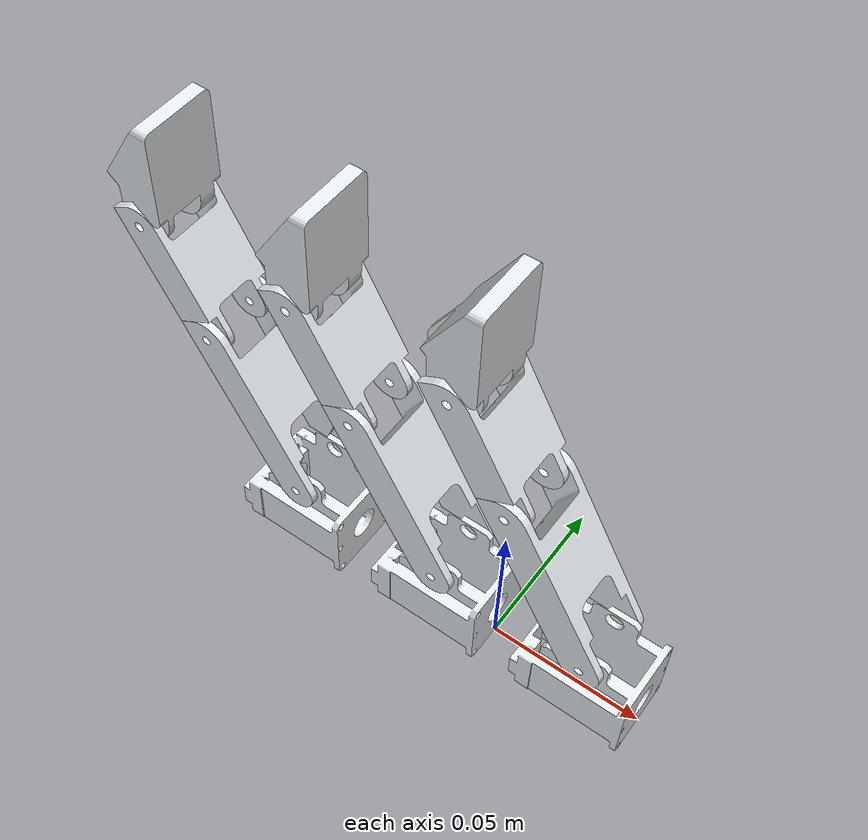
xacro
<?xml version="1.0"?>
<robot name="gripper" xmlns:xacro="http://www.ros.org/wiki/xacro">
  <xacro:include filename="$(find fingertest)/urdf/fingertest.xacro"/>
  <link name="world"/>

  <xacro:fingertest side="r" parent="world" child="base_link">
    <origin xyz="0.05 0 0" rpy="0 0 0" />
  </xacro:fingertest>

  <xacro:fingertest side="l" parent="world" child="base_link">
    <origin xyz="-0.05 0 0" rpy="0 0 0" />
  </xacro:fingertest>

  <xacro:fingertest side="m" parent="world" child="base_link">
    <origin xyz="0 0 0" rpy="0 0 0" />
  </xacro:fingertest>
</robot>

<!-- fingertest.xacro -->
<robot name="fingertest" xmlns:xacro="http://www.ros.org/wiki/xacro">
  <xacro:include filename="$(find fingertest)/urdf/fingertest.gazebo"/>
  <xacro:macro name="fingertest" params="parent side *origin">
  <link
    name="${side}_base_link">
    <inertial>
      <origin
        xyz="-0.01 0.00 0.04"
        rpy="0 0 0" />
      <mass
        value="0.0027" />
      <inertia
        ixx="0.01"
        ixy="0"
        ixz="0"
        iyy="0.01"
        iyz="0"
        izz="0.01" />
    </inertial>
    <visual>
      <origin
        xyz="0 0 0"
        rpy="0 0 0" />
      <geometry>
        <mesh
          filename="package://fingertest/meshes/base_link.STL" />
      </geometry>
      <material
        name="">
        <color
          rgba="0.898039215686275 0.917647058823529 0.929411764705882 1" />
      </material>
    </visual>
    <collision>
      <origin
        xyz="0 0 0"
        rpy="0 0 0" />
         <geometry>
               <mesh
          filename="package://fingertest/meshes/base_link.STL" />
            </geometry>

    </collision>
  </link>
  <link
    name="${side}_Link_1">
    <inertial>
      <origin
        xyz="0 -0.01 0.02"
        rpy="0 0 0" />
      <mass
        value="0.002" />
      <inertia
        ixx="0.01"
        ixy="0"
        ixz="0"
        iyy="0.01"
        iyz="0"
        izz="0.01" />
    </inertial>
    <visual>
      <origin
        xyz="0 0 0"
        rpy="0 0 0" />
      <geometry>
        <mesh
          filename="package://fingertest/meshes/Link_1.STL" />
      </geometry>
      <material
        name="">
        <color
          rgba="0.898039215686275 0.917647058823529 0.929411764705882 1" />
      </material>
    </visual>
    <collision name="${side}_Link1_bumper">
      <origin
        xyz="0 0 0"
        rpy="0 0 0" />
      <geometry name="${side}_Link1_bumper">
        <mesh
          filename="package://fingertest/meshes/Link_1.STL" />
      </geometry>

    </collision>

  </link>

  <joint name="${side}_fixed456" type="fixed">
    <xacro:insert_block name="origin" />
    <parent
      link="${parent}" />
    <child
      link="${side}_base_link" />
    <axis
      xyz="0 0 0" />
  </joint>

  <joint
    name="${side}_Joint1"
    type="continuous">
    <origin
      xyz="-0.0165 0 0.0301"
      rpy="0 -0.5235 0" />
    <parent
      link="${side}_base_link" />
    <child
      link="${side}_Link_1" />
    <axis
      xyz="0 -1 0" />
  </joint>
  <link
    name="${side}_Link_2">
    <inertial>
      <origin
        xyz="0 -0.01 0.01"
        rpy="0 0 0" />
      <mass
        value="0.00197" />
      <inertia
        ixx="0.01"
        ixy="0"
        ixz="0"
        iyy="0.01"
        iyz="0"
        izz="0.01" />
    </inertial>
    <visual>
      <origin
        xyz="0 0 0"
        rpy="0 0 0" />
      <geometry>
        <mesh
          filename="package://fingertest/meshes/Link_2.STL" />
      </geometry>
      <material
        name="">
        <color
          rgba="0.898039215686275 0.917647058823529 0.929411764705882 1" />
      </material>
    </visual>
    <collision name="${side}_Link2_bumper">
      <origin
        xyz="0 0 0"
        rpy="0 0 0" />
      <geometry name="${side}_Link2_bumper">
        <mesh
          filename="package://fingertest/meshes/Link_2.STL" />
      </geometry>
    </collision>
  </link>
  <joint
    name="${side}_Joint2"
    type="continuous">
    <origin
      xyz="0 0 0.05715"
      rpy="0 0 0" />
    <parent
      link="${side}_Link_1" />
    <child
      link="${side}_Link_2" />
    <axis
      xyz="0 -1 0" />
  </joint>
  <link
    name="${side}_Link_3">
    <inertial>
      <origin
        xyz="-0.02 0.01 0.00"
        rpy="0 0 0" />
      <mass
        value="0.0137" />
      <inertia
        ixx="0.01"
        ixy="0"
        ixz="0"
        iyy="0.01"
        iyz="0"
        izz="0.01" />
    </inertial>
    <visual>
      <origin
        xyz="0 0 0"
        rpy="0 0 0" />
      <geometry>
        <mesh
          filename="package://fingertest/meshes/Link_3.STL" />
      </geometry>
      <material
        name="">
        <color
          rgba="0.898039215686275 0.917647058823529 0.929411764705882 1" />
      </material>
    </visual>
    <collision name="${side}_Link3_bumper">
      <origin
        xyz="0 0 0"
        rpy="0 0 0" />
      <geometry name="${side}_Link3_bumper">
        <mesh
          filename="package://fingertest/meshes/Link_3.STL" />
      </geometry>
    </collision>
  </link>
  <joint
    name="${side}_Joint3"
    type="continuous">
    <origin
      xyz="0 0 0.0381"
      rpy="0 0.5235 0" />
    <parent
      link="${side}_Link_2" />
    <child
      link="${side}_Link_3" />
    <axis
      xyz="0 -1 0" />
  </joint>
  <transmission name="${side}_tran1">
    <type>transmission_interface/SimpleTransmission</type>
    <joint name="${side}_Joint1">
      <hardwareInterface>hardware_interface/EffortJointInterface</hardwareInterface>
    </joint>
    <actuator name="${side}_motor1">
      <hardwareInterface>hardware_interface/EffortJointInterface</hardwareInterface>
      <mechanicalReduction>1</mechanicalReduction>
    </actuator>
  </transmission>
    <transmission name="${side}_tran2">
    <type>transmission_interface/SimpleTransmission</type>
    <joint name="${side}_Joint2">
      <hardwareInterface>hardware_interface/EffortJointInterface</hardwareInterface>
    </joint>
    <actuator name="${side}_motor2">
      <hardwareInterface>hardware_interface/EffortJointInterface</hardwareInterface>
      <mechanicalReduction>1</mechanicalReduction>
    </actuator>
  </transmission>
    <transmission name="${side}_tran3">
    <type>transmission_interface/SimpleTransmission</type>
    <joint name="${side}_Joint3">
      <hardwareInterface>hardware_interface/EffortJointInterface</hardwareInterface>
    </joint>
    <actuator name="${side}_motor3">
      <hardwareInterface>hardware_interface/EffortJointInterface</hardwareInterface>
      <mechanicalReduction>1</mechanicalReduction>
    </actuator>
  </transmission>

  <xacro:fingertest_gazebo side="${side}"/>

  <gazebo reference="${side}_Link_1">
   <sensor name="${side}_Link_1_sensor" type="contact">
        <visualize>true</visualize>
        <always_on>true</always_on>
        <update_rate>50.0</update_rate>
        <contact>
            <collision>${side}_Link_1_fixed_joint_lump__${side}_Link1_bumper_collision</collision>

        </contact>
        <plugin name="gazebo_ros_bumper_controller" filename="libgazebo_ros_bumper.so">
                <alwaysOn>true</alwaysOn>
                <updateRate>10.0</updateRate>
                <bumperTopicName>${side}_Link1_bumper</bumperTopicName>
                <frameName>world</frameName>
            </plugin>
    </sensor>

    <gravity>true</gravity>
    </gazebo>

    <gazebo reference="${side}_Link_2">
   <sensor name="${side}_Link_2_sensor" type="contact">
        <visualize>true</visualize>
        <always_on>true</always_on>
        <update_rate>50.0</update_rate>
        <contact>
            <collision>${side}_Link_2_fixed_joint_lump__${side}_Link2_bumper_collision</collision>

        </contact>
        <plugin name="gazebo_ros_bumper_controller" filename="libgazebo_ros_bumper.so">
                <alwaysOn>true</alwaysOn>
                <updateRate>10.0</updateRate>
                <bumperTopicName>${side}_Link2_bumper</bumperTopicName>
                <frameName>world</frameName>
            </plugin>
    </sensor>

    <gravity>true</gravity>
    </gazebo>

  <gazebo reference="${side}_Link_3">
   <sensor name="${side}_Link_3_sensor" type="contact">
        <visualize>true</visualize>
        <always_on>true</always_on>
        <update_rate>50.0</update_rate>
        <contact>
            <collision>${side}_Link_3_fixed_joint_lump__${side}_Link3_bumper_collision</collision>

        </contact>
        <plugin name="gazebo_ros_bumper_controller" filename="libgazebo_ros_bumper.so">
                <alwaysOn>true</alwaysOn>
                <updateRate>10.0</updateRate>
                <bumperTopicName>${side}_Link3_bumper</bumperTopicName>
                <frameName>world</frameName>
            </plugin>
    </sensor>

    <gravity>true</gravity>
</gazebo>

  </xacro:macro>
</robot>
